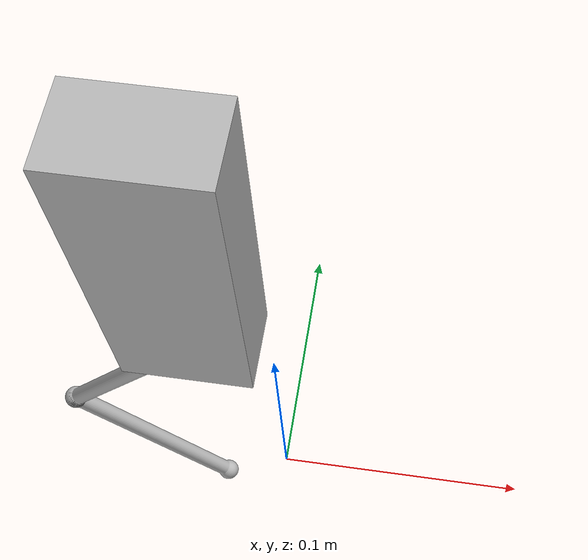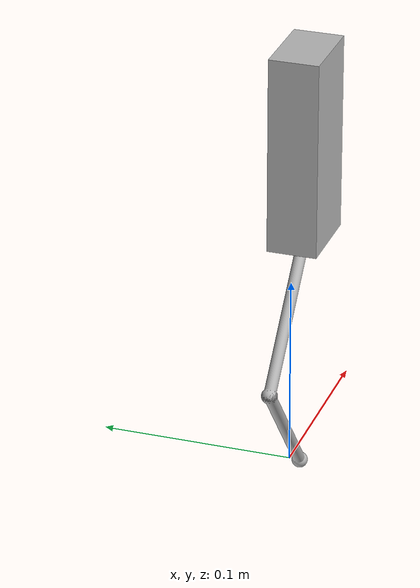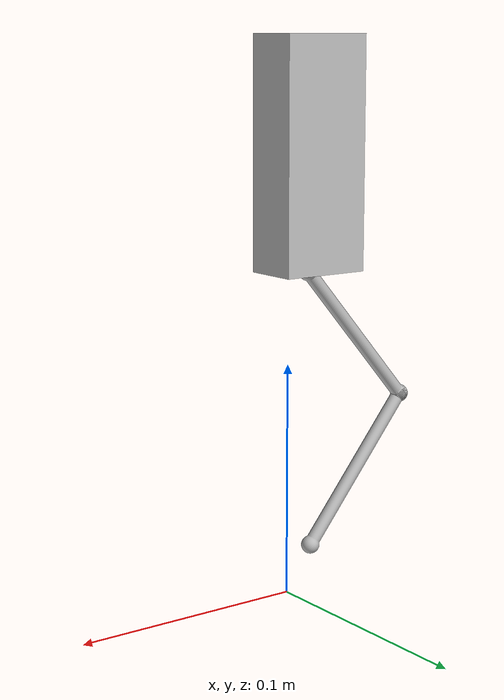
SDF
<?xml version="1.0" ?>
<sdf version="1.5">
	<model name="2019-05-09Bert">
		<pose>0.0 0.0 0.13606448471546173 1.5707963705062866 -0.0 0.0</pose>
		<link name="RigidGroup8">
			<pose>-0.019999999553 0.0 0.0125000001863 0.0 -0.0 -0.017453290522098538</pose>
			<inertial>
				<mass>1.0</mass>
				<pose>0 0 0 0 0 0</pose>
				<inertia>
					<ixx>1.0</ixx>
					<ixy>0.0</ixy>
					<ixz>0.0</ixz>
					<iyy>1.0</iyy>
					<iyz>0.0</iyz>
					<izz>1.0</izz>
				</inertia>
			</inertial>
			<collision name="COL_RigidGroup8_collision">
				<pose>0.01999695599079132 0.0003489553928375244 -0.012500000186264515 -9.920884114222872e-10 1.4551845839427813e-11 0.01745329238474369</pose>
				<geometry>
					<mesh>
						<uri>model://2019-05-09Bert/meshes/collisions/COL_RigidGroup8_collision.dae</uri>
						<scale>0.0010000000474974513 0.0010000000474974513 0.0010000000474974513</scale>
					</mesh>
				</geometry>
			</collision>
			<visual name="VIS_RigidGroup8_visual">
				<pose>0.01999695599079132 0.0003489553928375244 -0.012500000186264515 -9.920884114222872e-10 1.4551845839427813e-11 0.01745329238474369</pose>
				<geometry>
					<mesh>
						<uri>model://2019-05-09Bert/meshes/visual/VIS_RigidGroup8_visual.dae</uri>
						<scale>0.0010000001639127731 0.0010000000474974513 0.0010000000474974513</scale>
					</mesh>
				</geometry>
			</visual>
		</link>
		<link name="RigidGroup6">
			<pose>-0.019999999553 0.0 0.0125000001863 0.0 -0.0 2.4260076507925987</pose>
			<inertial>
				<mass>1.0</mass>
				<pose>0 0 0 0 0 0</pose>
				<inertia>
					<ixx>1.0</ixx>
					<ixy>0.0</ixy>
					<ixz>0.0</ixz>
					<iyy>1.0</iyy>
					<iyz>0.0</iyz>
					<izz>1.0</izz>
				</inertia>
			</inertial>
			<collision name="COL_RigidGroup6_collision">
				<pose>4.705399987869896e-06 -5.6006747399806045e-06 -1.0031984132297112e-09 -1.3460327963343843e-08 1.054284304302655e-08 -2.4434611797332764</pose>
				<geometry>
					<mesh>
						<uri>model://2019-05-09Bert/meshes/collisions/COL_RigidGroup6_collision.dae</uri>
						<scale>0.0010000000474974513 0.0009999999310821295 0.0010000000474974513</scale>
					</mesh>
				</geometry>
			</collision>
			<visual name="VIS_RigidGroup6_visual">
				<pose>4.705399987869896e-06 -5.6006747399806045e-06 -1.0031984132297112e-09 -1.3460327963343843e-08 1.054284304302655e-08 -2.4434611797332764</pose>
				<geometry>
					<mesh>
						<uri>model://2019-05-09Bert/meshes/visual/VIS_RigidGroup6_visual.dae</uri>
						<scale>0.0010000000474974513 0.0009999999310821295 0.0010000000474974513</scale>
					</mesh>
				</geometry>
			</visual>
		</link>
		<link name="RigidGroup7">
			<pose>-0.0724847212715 -0.0603767645708 0.0125000001863 0.0 -0.0 -2.4609142954098147</pose>
			<inertial>
				<mass>1.0</mass>
				<pose>0 0 0 0 0 0</pose>
				<inertia>
					<ixx>1.0</ixx>
					<ixy>0.0</ixy>
					<ixz>0.0</ixz>
					<iyy>1.0</iyy>
					<iyz>0.0</iyz>
					<izz>1.0</izz>
				</inertia>
			</inertial>
			<collision name="COL_RigidGroup7_collision">
				<pose>-4.898909367057058e-08 4.05635137212812e-06 -1.8410344360120234e-09 -1.6302406535828595e-08 7.631084031345381e-08 2.4434609413146973</pose>
				<geometry>
					<mesh>
						<uri>model://2019-05-09Bert/meshes/collisions/COL_RigidGroup7_collision.dae</uri>
						<scale>0.0010000003967434168 0.0010000003967434168 0.0010000000474974513</scale>
					</mesh>
				</geometry>
			</collision>
			<visual name="VIS_RigidGroup7_visual">
				<pose>-4.898909367057058e-08 4.05635137212812e-06 -1.8410344360120234e-09 -1.6302406535828595e-08 7.631084031345381e-08 2.4434609413146973</pose>
				<geometry>
					<mesh>
						<uri>model://2019-05-09Bert/meshes/visual/VIS_RigidGroup7_visual.dae</uri>
						<scale>0.0010000003967434168 0.0010000003967434168 0.0010000000474974513</scale>
					</mesh>
				</geometry>
			</visual>
		</link>
		<joint name="RigidGroup6" type="revolute">
			<parent>RigidGroup8</parent>
			<child>RigidGroup6</child>
			<axis>
				<xyz>0.0 0.0 1.0</xyz>
				<limit>
					<lower>-1.5707963267948966</lower>
					<upper>1.5707963267948966</upper>
				</limit>
			</axis>
		</joint>
		<joint name="RigidGroup7" type="revolute">
			<parent>RigidGroup6</parent>
            <child>RigidGroup7</child>
            <origin rpy="0.0 0.0 0.6"/>
			<axis>
				<xyz>0.0 0.0 1.0</xyz>
				<limit>
					<lower>-1.5707963267948966</lower>
					<upper>1.5707963267948966</upper>
				</limit>
			</axis>
		</joint>
	</model>
</sdf>
